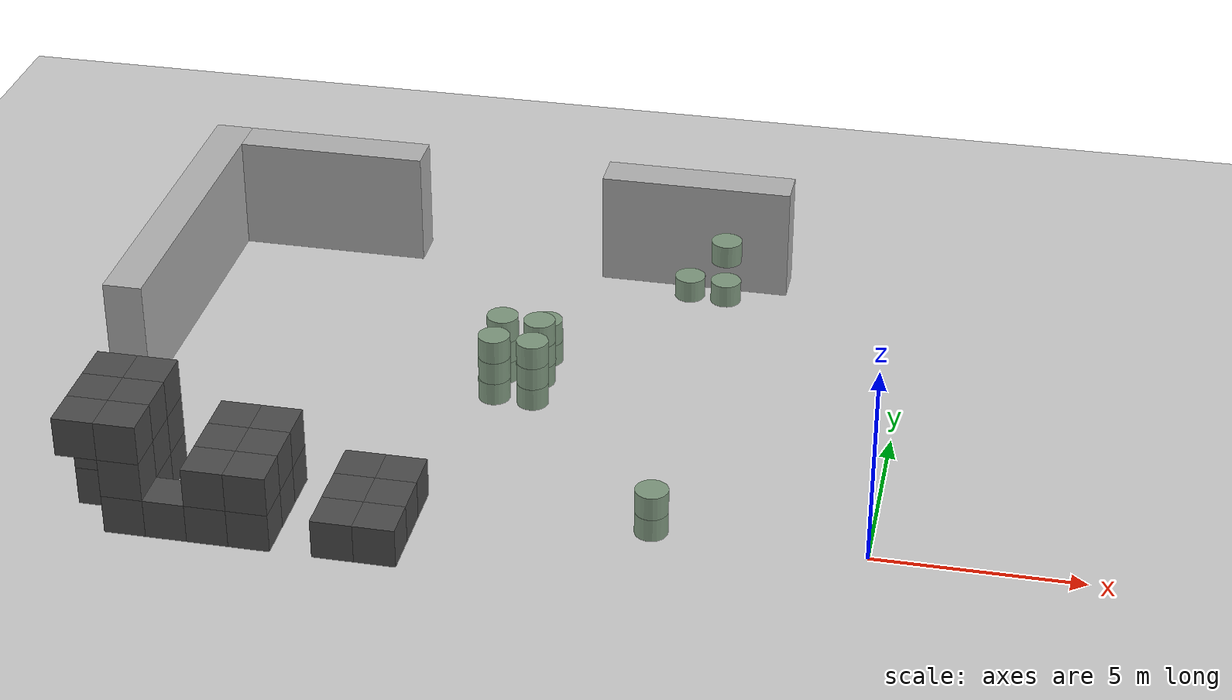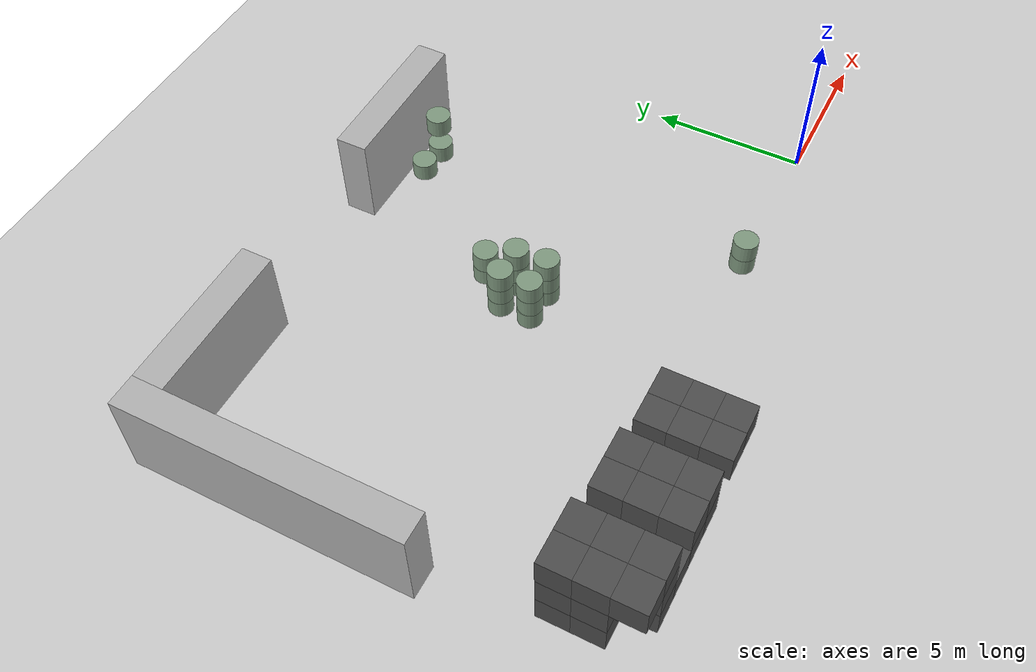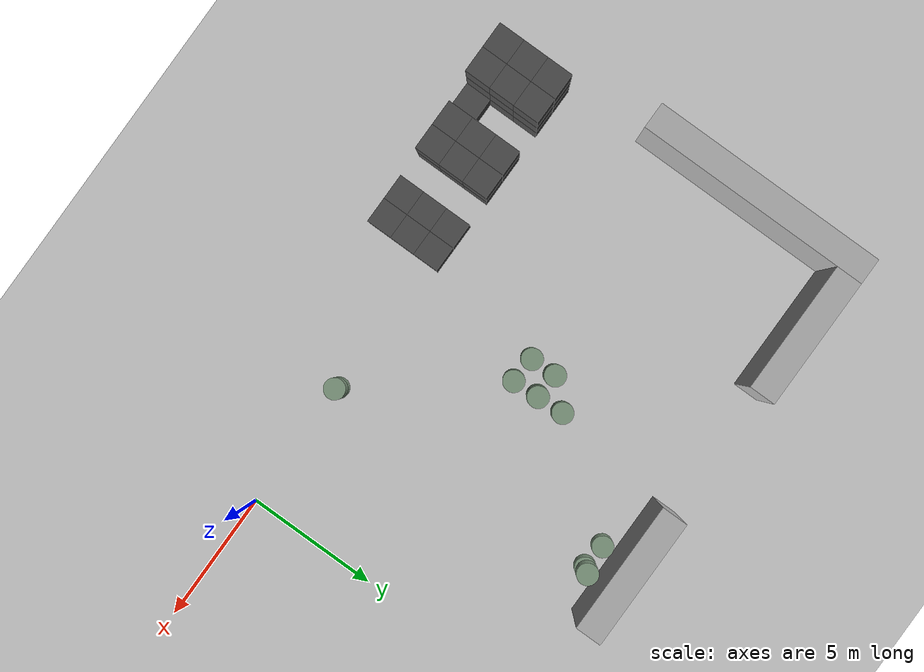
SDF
<sdf version="1.6">
 <world name="default">
  <include><uri>model://ground_plane</uri></include>
  <model name="wall_1">
   <pose>-19.0 8.0 1.5 0 -0 0</pose>
   <static>True</static>
   <link name="link">
    <inertial>
     <mass>100</mass>
     <inertia>
      <ixx>0.166667</ixx>
      <ixy>0</ixy>
      <ixz>0</ixz>
      <iyy>0.166667</iyy>
      <iyz>0</iyz>
      <izz>0.166667</izz>
     </inertia>
    </inertial>
    <collision name="collision"><geometry><box><size>1.0 9.0 3.0</size></box></geometry></collision>
    <visual name="visual">
     <geometry><box><size>1.0 9.0 3.0</size></box></geometry>
     <material><ambient>0.7 0.7 0.7 1</ambient><diffuse>0.7 0.7 0.7 1</diffuse></material>
    </visual>
   </link>
  </model>
  <model name="wall_9">
   <pose>-16.0 12.0 1.5 0 -0 0</pose>
   <static>True</static>
   <link name="link">
    <inertial>
     <mass>100</mass>
     <inertia>
      <ixx>0.166667</ixx>
      <ixy>0</ixy>
      <ixz>0</ixz>
      <iyy>0.166667</iyy>
      <iyz>0</iyz>
      <izz>0.166667</izz>
     </inertia>
    </inertial>
    <collision name="collision"><geometry><box><size>5.0 1.0 3.0</size></box></geometry></collision>
    <visual name="visual">
     <geometry><box><size>5.0 1.0 3.0</size></box></geometry>
     <material><ambient>0.7 0.7 0.7 1</ambient><diffuse>0.7 0.7 0.7 1</diffuse></material>
    </visual>
   </link>
  </model>
  <model name="wall_10">
   <pose>-6.0 12.0 1.5 0 -0 0</pose>
   <static>True</static>
   <link name="link">
    <inertial>
     <mass>100</mass>
     <inertia>
      <ixx>0.166667</ixx>
      <ixy>0</ixy>
      <ixz>0</ixz>
      <iyy>0.166667</iyy>
      <iyz>0</iyz>
      <izz>0.166667</izz>
     </inertia>
    </inertial>
    <collision name="collision"><geometry><box><size>5.0 1.0 3.0</size></box></geometry></collision>
    <visual name="visual">
     <geometry><box><size>5.0 1.0 3.0</size></box></geometry>
     <material><ambient>0.7 0.7 0.7 1</ambient><diffuse>0.7 0.7 0.7 1</diffuse></material>
    </visual>
   </link>
  </model>
  <model name="unit_box_10">
   <pose>-18.0 -2.0 2.5 0 -0 0</pose>
   <static>True</static>
   <link name="link">
    <inertial>
     <mass>100</mass>
     <inertia>
      <ixx>0.166667</ixx>
      <ixy>0</ixy>
      <ixz>0</ixz>
      <iyy>0.166667</iyy>
      <iyz>0</iyz>
      <izz>0.166667</izz>
     </inertia>
    </inertial>
    <collision name="collision"><geometry><box><size>1.0 1.0 1.0</size></box></geometry></collision>
    <visual name="visual">
     <geometry><box><size>1.0 1.0 1.0</size></box></geometry>
     <material><ambient>0.3 0.3 0.3 1</ambient><diffuse>0.3 0.3 0.3 1</diffuse></material>
    </visual>
   </link>
  </model>
  <model name="unit_box_11">
   <pose>-18.0 -1.0 0.5 0 -0 0</pose>
   <static>True</static>
   <link name="link">
    <inertial>
     <mass>100</mass>
     <inertia>
      <ixx>0.166667</ixx>
      <ixy>0</ixy>
      <ixz>0</ixz>
      <iyy>0.166667</iyy>
      <iyz>0</iyz>
      <izz>0.166667</izz>
     </inertia>
    </inertial>
    <collision name="collision"><geometry><box><size>1.0 1.0 1.0</size></box></geometry></collision>
    <visual name="visual">
     <geometry><box><size>1.0 1.0 1.0</size></box></geometry>
     <material><ambient>0.3 0.3 0.3 1</ambient><diffuse>0.3 0.3 0.3 1</diffuse></material>
    </visual>
   </link>
  </model>
  <model name="unit_box_12">
   <pose>-18.0 -1.0 1.5 0 -0 0</pose>
   <static>True</static>
   <link name="link">
    <inertial>
     <mass>100</mass>
     <inertia>
      <ixx>0.166667</ixx>
      <ixy>0</ixy>
      <ixz>0</ixz>
      <iyy>0.166667</iyy>
      <iyz>0</iyz>
      <izz>0.166667</izz>
     </inertia>
    </inertial>
    <collision name="collision"><geometry><box><size>1.0 1.0 1.0</size></box></geometry></collision>
    <visual name="visual">
     <geometry><box><size>1.0 1.0 1.0</size></box></geometry>
     <material><ambient>0.3 0.3 0.3 1</ambient><diffuse>0.3 0.3 0.3 1</diffuse></material>
    </visual>
   </link>
  </model>
  <model name="unit_box_13">
   <pose>-18.0 -1.0 2.5 0 -0 0</pose>
   <static>True</static>
   <link name="link">
    <inertial>
     <mass>100</mass>
     <inertia>
      <ixx>0.166667</ixx>
      <ixy>0</ixy>
      <ixz>0</ixz>
      <iyy>0.166667</iyy>
      <iyz>0</iyz>
      <izz>0.166667</izz>
     </inertia>
    </inertial>
    <collision name="collision"><geometry><box><size>1.0 1.0 1.0</size></box></geometry></collision>
    <visual name="visual">
     <geometry><box><size>1.0 1.0 1.0</size></box></geometry>
     <material><ambient>0.3 0.3 0.3 1</ambient><diffuse>0.3 0.3 0.3 1</diffuse></material>
    </visual>
   </link>
  </model>
  <model name="unit_box_14">
   <pose>-18.0 0.0 0.5 0 -0 0</pose>
   <static>True</static>
   <link name="link">
    <inertial>
     <mass>100</mass>
     <inertia>
      <ixx>0.166667</ixx>
      <ixy>0</ixy>
      <ixz>0</ixz>
      <iyy>0.166667</iyy>
      <iyz>0</iyz>
      <izz>0.166667</izz>
     </inertia>
    </inertial>
    <collision name="collision"><geometry><box><size>1.0 1.0 1.0</size></box></geometry></collision>
    <visual name="visual">
     <geometry><box><size>1.0 1.0 1.0</size></box></geometry>
     <material><ambient>0.3 0.3 0.3 1</ambient><diffuse>0.3 0.3 0.3 1</diffuse></material>
    </visual>
   </link>
  </model>
  <model name="unit_box_15">
   <pose>-18.0 0.0 1.5 0 -0 0</pose>
   <static>True</static>
   <link name="link">
    <inertial>
     <mass>100</mass>
     <inertia>
      <ixx>0.166667</ixx>
      <ixy>0</ixy>
      <ixz>0</ixz>
      <iyy>0.166667</iyy>
      <iyz>0</iyz>
      <izz>0.166667</izz>
     </inertia>
    </inertial>
    <collision name="collision"><geometry><box><size>1.0 1.0 1.0</size></box></geometry></collision>
    <visual name="visual">
     <geometry><box><size>1.0 1.0 1.0</size></box></geometry>
     <material><ambient>0.3 0.3 0.3 1</ambient><diffuse>0.3 0.3 0.3 1</diffuse></material>
    </visual>
   </link>
  </model>
  <model name="unit_box_16">
   <pose>-18.0 0.0 2.5 0 -0 0</pose>
   <static>True</static>
   <link name="link">
    <inertial>
     <mass>100</mass>
     <inertia>
      <ixx>0.166667</ixx>
      <ixy>0</ixy>
      <ixz>0</ixz>
      <iyy>0.166667</iyy>
      <iyz>0</iyz>
      <izz>0.166667</izz>
     </inertia>
    </inertial>
    <collision name="collision"><geometry><box><size>1.0 1.0 1.0</size></box></geometry></collision>
    <visual name="visual">
     <geometry><box><size>1.0 1.0 1.0</size></box></geometry>
     <material><ambient>0.3 0.3 0.3 1</ambient><diffuse>0.3 0.3 0.3 1</diffuse></material>
    </visual>
   </link>
  </model>
  <model name="unit_box_20">
   <pose>-17.0 -2.0 0.5 0 -0 0</pose>
   <static>True</static>
   <link name="link">
    <inertial>
     <mass>100</mass>
     <inertia>
      <ixx>0.166667</ixx>
      <ixy>0</ixy>
      <ixz>0</ixz>
      <iyy>0.166667</iyy>
      <iyz>0</iyz>
      <izz>0.166667</izz>
     </inertia>
    </inertial>
    <collision name="collision"><geometry><box><size>1.0 1.0 1.0</size></box></geometry></collision>
    <visual name="visual">
     <geometry><box><size>1.0 1.0 1.0</size></box></geometry>
     <material><ambient>0.3 0.3 0.3 1</ambient><diffuse>0.3 0.3 0.3 1</diffuse></material>
    </visual>
   </link>
  </model>
  <model name="unit_box_21">
   <pose>-17.0 -2.0 1.5 0 -0 0</pose>
   <static>True</static>
   <link name="link">
    <inertial>
     <mass>100</mass>
     <inertia>
      <ixx>0.166667</ixx>
      <ixy>0</ixy>
      <ixz>0</ixz>
      <iyy>0.166667</iyy>
      <iyz>0</iyz>
      <izz>0.166667</izz>
     </inertia>
    </inertial>
    <collision name="collision"><geometry><box><size>1.0 1.0 1.0</size></box></geometry></collision>
    <visual name="visual">
     <geometry><box><size>1.0 1.0 1.0</size></box></geometry>
     <material><ambient>0.3 0.3 0.3 1</ambient><diffuse>0.3 0.3 0.3 1</diffuse></material>
    </visual>
   </link>
  </model>
  <model name="unit_box_22">
   <pose>-17.0 -2.0 2.5 0 -0 0</pose>
   <static>True</static>
   <link name="link">
    <inertial>
     <mass>100</mass>
     <inertia>
      <ixx>0.166667</ixx>
      <ixy>0</ixy>
      <ixz>0</ixz>
      <iyy>0.166667</iyy>
      <iyz>0</iyz>
      <izz>0.166667</izz>
     </inertia>
    </inertial>
    <collision name="collision"><geometry><box><size>1.0 1.0 1.0</size></box></geometry></collision>
    <visual name="visual">
     <geometry><box><size>1.0 1.0 1.0</size></box></geometry>
     <material><ambient>0.3 0.3 0.3 1</ambient><diffuse>0.3 0.3 0.3 1</diffuse></material>
    </visual>
   </link>
  </model>
  <model name="unit_box_23">
   <pose>-17.0 -1.0 0.5 0 -0 0</pose>
   <static>True</static>
   <link name="link">
    <inertial>
     <mass>100</mass>
     <inertia>
      <ixx>0.166667</ixx>
      <ixy>0</ixy>
      <ixz>0</ixz>
      <iyy>0.166667</iyy>
      <iyz>0</iyz>
      <izz>0.166667</izz>
     </inertia>
    </inertial>
    <collision name="collision"><geometry><box><size>1.0 1.0 1.0</size></box></geometry></collision>
    <visual name="visual">
     <geometry><box><size>1.0 1.0 1.0</size></box></geometry>
     <material><ambient>0.3 0.3 0.3 1</ambient><diffuse>0.3 0.3 0.3 1</diffuse></material>
    </visual>
   </link>
  </model>
  <model name="unit_box_24">
   <pose>-17.0 -1.0 1.5 0 -0 0</pose>
   <static>True</static>
   <link name="link">
    <inertial>
     <mass>100</mass>
     <inertia>
      <ixx>0.166667</ixx>
      <ixy>0</ixy>
      <ixz>0</ixz>
      <iyy>0.166667</iyy>
      <iyz>0</iyz>
      <izz>0.166667</izz>
     </inertia>
    </inertial>
    <collision name="collision"><geometry><box><size>1.0 1.0 1.0</size></box></geometry></collision>
    <visual name="visual">
     <geometry><box><size>1.0 1.0 1.0</size></box></geometry>
     <material><ambient>0.3 0.3 0.3 1</ambient><diffuse>0.3 0.3 0.3 1</diffuse></material>
    </visual>
   </link>
  </model>
  <model name="unit_box_25">
   <pose>-17.0 -1.0 2.5 0 -0 0</pose>
   <static>True</static>
   <link name="link">
    <inertial>
     <mass>100</mass>
     <inertia>
      <ixx>0.166667</ixx>
      <ixy>0</ixy>
      <ixz>0</ixz>
      <iyy>0.166667</iyy>
      <iyz>0</iyz>
      <izz>0.166667</izz>
     </inertia>
    </inertial>
    <collision name="collision"><geometry><box><size>1.0 1.0 1.0</size></box></geometry></collision>
    <visual name="visual">
     <geometry><box><size>1.0 1.0 1.0</size></box></geometry>
     <material><ambient>0.3 0.3 0.3 1</ambient><diffuse>0.3 0.3 0.3 1</diffuse></material>
    </visual>
   </link>
  </model>
  <model name="unit_box_26">
   <pose>-17.0 0.0 0.5 0 -0 0</pose>
   <static>True</static>
   <link name="link">
    <inertial>
     <mass>100</mass>
     <inertia>
      <ixx>0.166667</ixx>
      <ixy>0</ixy>
      <ixz>0</ixz>
      <iyy>0.166667</iyy>
      <iyz>0</iyz>
      <izz>0.166667</izz>
     </inertia>
    </inertial>
    <collision name="collision"><geometry><box><size>1.0 1.0 1.0</size></box></geometry></collision>
    <visual name="visual">
     <geometry><box><size>1.0 1.0 1.0</size></box></geometry>
     <material><ambient>0.3 0.3 0.3 1</ambient><diffuse>0.3 0.3 0.3 1</diffuse></material>
    </visual>
   </link>
  </model>
  <model name="unit_box_27">
   <pose>-17.0 0.0 1.5 0 -0 0</pose>
   <static>True</static>
   <link name="link">
    <inertial>
     <mass>100</mass>
     <inertia>
      <ixx>0.166667</ixx>
      <ixy>0</ixy>
      <ixz>0</ixz>
      <iyy>0.166667</iyy>
      <iyz>0</iyz>
      <izz>0.166667</izz>
     </inertia>
    </inertial>
    <collision name="collision"><geometry><box><size>1.0 1.0 1.0</size></box></geometry></collision>
    <visual name="visual">
     <geometry><box><size>1.0 1.0 1.0</size></box></geometry>
     <material><ambient>0.3 0.3 0.3 1</ambient><diffuse>0.3 0.3 0.3 1</diffuse></material>
    </visual>
   </link>
  </model>
  <model name="unit_box_28">
   <pose>-17.0 0.0 2.5 0 -0 0</pose>
   <static>True</static>
   <link name="link">
    <inertial>
     <mass>100</mass>
     <inertia>
      <ixx>0.166667</ixx>
      <ixy>0</ixy>
      <ixz>0</ixz>
      <iyy>0.166667</iyy>
      <iyz>0</iyz>
      <izz>0.166667</izz>
     </inertia>
    </inertial>
    <collision name="collision"><geometry><box><size>1.0 1.0 1.0</size></box></geometry></collision>
    <visual name="visual">
     <geometry><box><size>1.0 1.0 1.0</size></box></geometry>
     <material><ambient>0.3 0.3 0.3 1</ambient><diffuse>0.3 0.3 0.3 1</diffuse></material>
    </visual>
   </link>
  </model>
  <model name="unit_box_29">
   <pose>-16.0 -2.0 0.5 0 -0 0</pose>
   <static>True</static>
   <link name="link">
    <inertial>
     <mass>100</mass>
     <inertia>
      <ixx>0.166667</ixx>
      <ixy>0</ixy>
      <ixz>0</ixz>
      <iyy>0.166667</iyy>
      <iyz>0</iyz>
      <izz>0.166667</izz>
     </inertia>
    </inertial>
    <collision name="collision"><geometry><box><size>1.0 1.0 1.0</size></box></geometry></collision>
    <visual name="visual">
     <geometry><box><size>1.0 1.0 1.0</size></box></geometry>
     <material><ambient>0.3 0.3 0.3 1</ambient><diffuse>0.3 0.3 0.3 1</diffuse></material>
    </visual>
   </link>
  </model>
  <model name="unit_box_32">
   <pose>-15.0 -2.0 0.5 0 -0 0</pose>
   <static>True</static>
   <link name="link">
    <inertial>
     <mass>100</mass>
     <inertia>
      <ixx>0.166667</ixx>
      <ixy>0</ixy>
      <ixz>0</ixz>
      <iyy>0.166667</iyy>
      <iyz>0</iyz>
      <izz>0.166667</izz>
     </inertia>
    </inertial>
    <collision name="collision"><geometry><box><size>1.0 1.0 1.0</size></box></geometry></collision>
    <visual name="visual">
     <geometry><box><size>1.0 1.0 1.0</size></box></geometry>
     <material><ambient>0.3 0.3 0.3 1</ambient><diffuse>0.3 0.3 0.3 1</diffuse></material>
    </visual>
   </link>
  </model>
  <model name="unit_box_33">
   <pose>-15.0 -2.0 1.5 0 -0 0</pose>
   <static>True</static>
   <link name="link">
    <inertial>
     <mass>100</mass>
     <inertia>
      <ixx>0.166667</ixx>
      <ixy>0</ixy>
      <ixz>0</ixz>
      <iyy>0.166667</iyy>
      <iyz>0</iyz>
      <izz>0.166667</izz>
     </inertia>
    </inertial>
    <collision name="collision"><geometry><box><size>1.0 1.0 1.0</size></box></geometry></collision>
    <visual name="visual">
     <geometry><box><size>1.0 1.0 1.0</size></box></geometry>
     <material><ambient>0.3 0.3 0.3 1</ambient><diffuse>0.3 0.3 0.3 1</diffuse></material>
    </visual>
   </link>
  </model>
  <model name="unit_box_34">
   <pose>-15.0 -1.0 0.5 0 -0 0</pose>
   <static>True</static>
   <link name="link">
    <inertial>
     <mass>100</mass>
     <inertia>
      <ixx>0.166667</ixx>
      <ixy>0</ixy>
      <ixz>0</ixz>
      <iyy>0.166667</iyy>
      <iyz>0</iyz>
      <izz>0.166667</izz>
     </inertia>
    </inertial>
    <collision name="collision"><geometry><box><size>1.0 1.0 1.0</size></box></geometry></collision>
    <visual name="visual">
     <geometry><box><size>1.0 1.0 1.0</size></box></geometry>
     <material><ambient>0.3 0.3 0.3 1</ambient><diffuse>0.3 0.3 0.3 1</diffuse></material>
    </visual>
   </link>
  </model>
  <model name="unit_box_35">
   <pose>-15.0 -1.0 1.5 0 -0 0</pose>
   <static>True</static>
   <link name="link">
    <inertial>
     <mass>100</mass>
     <inertia>
      <ixx>0.166667</ixx>
      <ixy>0</ixy>
      <ixz>0</ixz>
      <iyy>0.166667</iyy>
      <iyz>0</iyz>
      <izz>0.166667</izz>
     </inertia>
    </inertial>
    <collision name="collision"><geometry><box><size>1.0 1.0 1.0</size></box></geometry></collision>
    <visual name="visual">
     <geometry><box><size>1.0 1.0 1.0</size></box></geometry>
     <material><ambient>0.3 0.3 0.3 1</ambient><diffuse>0.3 0.3 0.3 1</diffuse></material>
    </visual>
   </link>
  </model>
  <model name="unit_box_36">
   <pose>-15.0 0.0 0.5 0 -0 0</pose>
   <static>True</static>
   <link name="link">
    <inertial>
     <mass>100</mass>
     <inertia>
      <ixx>0.166667</ixx>
      <ixy>0</ixy>
      <ixz>0</ixz>
      <iyy>0.166667</iyy>
      <iyz>0</iyz>
      <izz>0.166667</izz>
     </inertia>
    </inertial>
    <collision name="collision"><geometry><box><size>1.0 1.0 1.0</size></box></geometry></collision>
    <visual name="visual">
     <geometry><box><size>1.0 1.0 1.0</size></box></geometry>
     <material><ambient>0.3 0.3 0.3 1</ambient><diffuse>0.3 0.3 0.3 1</diffuse></material>
    </visual>
   </link>
  </model>
  <model name="unit_box_37">
   <pose>-15.0 0.0 1.5 0 -0 0</pose>
   <static>True</static>
   <link name="link">
    <inertial>
     <mass>100</mass>
     <inertia>
      <ixx>0.166667</ixx>
      <ixy>0</ixy>
      <ixz>0</ixz>
      <iyy>0.166667</iyy>
      <iyz>0</iyz>
      <izz>0.166667</izz>
     </inertia>
    </inertial>
    <collision name="collision"><geometry><box><size>1.0 1.0 1.0</size></box></geometry></collision>
    <visual name="visual">
     <geometry><box><size>1.0 1.0 1.0</size></box></geometry>
     <material><ambient>0.3 0.3 0.3 1</ambient><diffuse>0.3 0.3 0.3 1</diffuse></material>
    </visual>
   </link>
  </model>
  <model name="unit_box_42">
   <pose>-14.0 -2.0 0.5 0 -0 0</pose>
   <static>True</static>
   <link name="link">
    <inertial>
     <mass>100</mass>
     <inertia>
      <ixx>0.166667</ixx>
      <ixy>0</ixy>
      <ixz>0</ixz>
      <iyy>0.166667</iyy>
      <iyz>0</iyz>
      <izz>0.166667</izz>
     </inertia>
    </inertial>
    <collision name="collision"><geometry><box><size>1.0 1.0 1.0</size></box></geometry></collision>
    <visual name="visual">
     <geometry><box><size>1.0 1.0 1.0</size></box></geometry>
     <material><ambient>0.3 0.3 0.3 1</ambient><diffuse>0.3 0.3 0.3 1</diffuse></material>
    </visual>
   </link>
  </model>
  <model name="unit_box_43">
   <pose>-14.0 -2.0 1.5 0 -0 0</pose>
   <static>True</static>
   <link name="link">
    <inertial>
     <mass>100</mass>
     <inertia>
      <ixx>0.166667</ixx>
      <ixy>0</ixy>
      <ixz>0</ixz>
      <iyy>0.166667</iyy>
      <iyz>0</iyz>
      <izz>0.166667</izz>
     </inertia>
    </inertial>
    <collision name="collision"><geometry><box><size>1.0 1.0 1.0</size></box></geometry></collision>
    <visual name="visual">
     <geometry><box><size>1.0 1.0 1.0</size></box></geometry>
     <material><ambient>0.3 0.3 0.3 1</ambient><diffuse>0.3 0.3 0.3 1</diffuse></material>
    </visual>
   </link>
  </model>
  <model name="unit_box_44">
   <pose>-14.0 -1.0 0.5 0 -0 0</pose>
   <static>True</static>
   <link name="link">
    <inertial>
     <mass>100</mass>
     <inertia>
      <ixx>0.166667</ixx>
      <ixy>0</ixy>
      <ixz>0</ixz>
      <iyy>0.166667</iyy>
      <iyz>0</iyz>
      <izz>0.166667</izz>
     </inertia>
    </inertial>
    <collision name="collision"><geometry><box><size>1.0 1.0 1.0</size></box></geometry></collision>
    <visual name="visual">
     <geometry><box><size>1.0 1.0 1.0</size></box></geometry>
     <material><ambient>0.3 0.3 0.3 1</ambient><diffuse>0.3 0.3 0.3 1</diffuse></material>
    </visual>
   </link>
  </model>
  <model name="unit_box_45">
   <pose>-14.0 -1.0 1.5 0 -0 0</pose>
   <static>True</static>
   <link name="link">
    <inertial>
     <mass>100</mass>
     <inertia>
      <ixx>0.166667</ixx>
      <ixy>0</ixy>
      <ixz>0</ixz>
      <iyy>0.166667</iyy>
      <iyz>0</iyz>
      <izz>0.166667</izz>
     </inertia>
    </inertial>
    <collision name="collision"><geometry><box><size>1.0 1.0 1.0</size></box></geometry></collision>
    <visual name="visual">
     <geometry><box><size>1.0 1.0 1.0</size></box></geometry>
     <material><ambient>0.3 0.3 0.3 1</ambient><diffuse>0.3 0.3 0.3 1</diffuse></material>
    </visual>
   </link>
  </model>
  <model name="unit_box_46">
   <pose>-14.0 0.0 0.5 0 -0 0</pose>
   <static>True</static>
   <link name="link">
    <inertial>
     <mass>100</mass>
     <inertia>
      <ixx>0.166667</ixx>
      <ixy>0</ixy>
      <ixz>0</ixz>
      <iyy>0.166667</iyy>
      <iyz>0</iyz>
      <izz>0.166667</izz>
     </inertia>
    </inertial>
    <collision name="collision"><geometry><box><size>1.0 1.0 1.0</size></box></geometry></collision>
    <visual name="visual">
     <geometry><box><size>1.0 1.0 1.0</size></box></geometry>
     <material><ambient>0.3 0.3 0.3 1</ambient><diffuse>0.3 0.3 0.3 1</diffuse></material>
    </visual>
   </link>
  </model>
  <model name="unit_box_47">
   <pose>-14.0 0.0 1.5 0 -0 0</pose>
   <static>True</static>
   <link name="link">
    <inertial>
     <mass>100</mass>
     <inertia>
      <ixx>0.166667</ixx>
      <ixy>0</ixy>
      <ixz>0</ixz>
      <iyy>0.166667</iyy>
      <iyz>0</iyz>
      <izz>0.166667</izz>
     </inertia>
    </inertial>
    <collision name="collision"><geometry><box><size>1.0 1.0 1.0</size></box></geometry></collision>
    <visual name="visual">
     <geometry><box><size>1.0 1.0 1.0</size></box></geometry>
     <material><ambient>0.3 0.3 0.3 1</ambient><diffuse>0.3 0.3 0.3 1</diffuse></material>
    </visual>
   </link>
  </model>
  <model name="unit_box_50">
   <pose>-12.0 -2.0 0.5 0 -0 0</pose>
   <static>True</static>
   <link name="link">
    <inertial>
     <mass>100</mass>
     <inertia>
      <ixx>0.166667</ixx>
      <ixy>0</ixy>
      <ixz>0</ixz>
      <iyy>0.166667</iyy>
      <iyz>0</iyz>
      <izz>0.166667</izz>
     </inertia>
    </inertial>
    <collision name="collision"><geometry><box><size>1.0 1.0 1.0</size></box></geometry></collision>
    <visual name="visual">
     <geometry><box><size>1.0 1.0 1.0</size></box></geometry>
     <material><ambient>0.3 0.3 0.3 1</ambient><diffuse>0.3 0.3 0.3 1</diffuse></material>
    </visual>
   </link>
  </model>
  <model name="unit_box_51">
   <pose>-12.0 -1.0 0.5 0 -0 0</pose>
   <static>True</static>
   <link name="link">
    <inertial>
     <mass>100</mass>
     <inertia>
      <ixx>0.166667</ixx>
      <ixy>0</ixy>
      <ixz>0</ixz>
      <iyy>0.166667</iyy>
      <iyz>0</iyz>
      <izz>0.166667</izz>
     </inertia>
    </inertial>
    <collision name="collision"><geometry><box><size>1.0 1.0 1.0</size></box></geometry></collision>
    <visual name="visual">
     <geometry><box><size>1.0 1.0 1.0</size></box></geometry>
     <material><ambient>0.3 0.3 0.3 1</ambient><diffuse>0.3 0.3 0.3 1</diffuse></material>
    </visual>
   </link>
  </model>
  <model name="unit_box_52">
   <pose>-12.0 0.0 0.5 0 -0 0</pose>
   <static>True</static>
   <link name="link">
    <inertial>
     <mass>100</mass>
     <inertia>
      <ixx>0.166667</ixx>
      <ixy>0</ixy>
      <ixz>0</ixz>
      <iyy>0.166667</iyy>
      <iyz>0</iyz>
      <izz>0.166667</izz>
     </inertia>
    </inertial>
    <collision name="collision"><geometry><box><size>1.0 1.0 1.0</size></box></geometry></collision>
    <visual name="visual">
     <geometry><box><size>1.0 1.0 1.0</size></box></geometry>
     <material><ambient>0.3 0.3 0.3 1</ambient><diffuse>0.3 0.3 0.3 1</diffuse></material>
    </visual>
   </link>
  </model>
  <model name="unit_box_55">
   <pose>-11.0 -2.0 0.5 0 -0 0</pose>
   <static>True</static>
   <link name="link">
    <inertial>
     <mass>100</mass>
     <inertia>
      <ixx>0.166667</ixx>
      <ixy>0</ixy>
      <ixz>0</ixz>
      <iyy>0.166667</iyy>
      <iyz>0</iyz>
      <izz>0.166667</izz>
     </inertia>
    </inertial>
    <collision name="collision"><geometry><box><size>1.0 1.0 1.0</size></box></geometry></collision>
    <visual name="visual">
     <geometry><box><size>1.0 1.0 1.0</size></box></geometry>
     <material><ambient>0.3 0.3 0.3 1</ambient><diffuse>0.3 0.3 0.3 1</diffuse></material>
    </visual>
   </link>
  </model>
  <model name="unit_box_56">
   <pose>-11.0 -1.0 0.5 0 -0 0</pose>
   <static>True</static>
   <link name="link">
    <inertial>
     <mass>100</mass>
     <inertia>
      <ixx>0.166667</ixx>
      <ixy>0</ixy>
      <ixz>0</ixz>
      <iyy>0.166667</iyy>
      <iyz>0</iyz>
      <izz>0.166667</izz>
     </inertia>
    </inertial>
    <collision name="collision"><geometry><box><size>1.0 1.0 1.0</size></box></geometry></collision>
    <visual name="visual">
     <geometry><box><size>1.0 1.0 1.0</size></box></geometry>
     <material><ambient>0.3 0.3 0.3 1</ambient><diffuse>0.3 0.3 0.3 1</diffuse></material>
    </visual>
   </link>
  </model>
  <model name="unit_box_57">
   <pose>-11.0 0.0 0.5 0 -0 0</pose>
   <static>True</static>
   <link name="link">
    <inertial>
     <mass>100</mass>
     <inertia>
      <ixx>0.166667</ixx>
      <ixy>0</ixy>
      <ixz>0</ixz>
      <iyy>0.166667</iyy>
      <iyz>0</iyz>
      <izz>0.166667</izz>
     </inertia>
    </inertial>
    <collision name="collision"><geometry><box><size>1.0 1.0 1.0</size></box></geometry></collision>
    <visual name="visual">
     <geometry><box><size>1.0 1.0 1.0</size></box></geometry>
     <material><ambient>0.3 0.3 0.3 1</ambient><diffuse>0.3 0.3 0.3 1</diffuse></material>
    </visual>
   </link>
  </model>
  <model name="unit_cylinder_42">
   <pose>-9.96679663354 5.0319738293 0.3 0 -0 0</pose>
   <static>True</static>
   <link name="link">
    <inertial>
     <mass>100</mass>
     <inertia><ixx>0.145833</ixx><ixy>0</ixy><ixz>0</ixz><iyy>0.145833</iyy><iyz>0</iyz><izz>0.125</izz></inertia>
    </inertial>
    <collision name="collision">
     <geometry><cylinder><radius>0.4</radius><length>0.6</length></cylinder></geometry>
     <max_contacts>100</max_contacts>
    </collision>
    <visual name="visual">
     <geometry><cylinder><radius>0.4</radius><length>0.6</length></cylinder></geometry>
     <material><ambient>0.5 0.6 0.5 1</ambient><diffuse>0.5 0.6 0.5 1</diffuse></material>
    </visual>
   </link>
  </model>
  <model name="unit_cylinder_43">
   <pose>-9.95777693728 5.03190906488 0.9 0 -0 0</pose>
   <static>True</static>
   <link name="link">
    <inertial>
     <mass>100</mass>
     <inertia><ixx>0.145833</ixx><ixy>0</ixy><ixz>0</ixz><iyy>0.145833</iyy><iyz>0</iyz><izz>0.125</izz></inertia>
    </inertial>
    <collision name="collision">
     <geometry><cylinder><radius>0.4</radius><length>0.6</length></cylinder></geometry>
     <max_contacts>100</max_contacts>
    </collision>
    <visual name="visual">
     <geometry><cylinder><radius>0.4</radius><length>0.6</length></cylinder></geometry>
     <material><ambient>0.5 0.6 0.5 1</ambient><diffuse>0.5 0.6 0.5 1</diffuse></material>
    </visual>
   </link>
  </model>
  <model name="unit_cylinder_44">
   <pose>-9.95690958295 5.04395994404 1.5 0 -0 0</pose>
   <static>True</static>
   <link name="link">
    <inertial>
     <mass>100</mass>
     <inertia><ixx>0.145833</ixx><ixy>0</ixy><ixz>0</ixz><iyy>0.145833</iyy><iyz>0</iyz><izz>0.125</izz></inertia>
    </inertial>
    <collision name="collision">
     <geometry><cylinder><radius>0.4</radius><length>0.6</length></cylinder></geometry>
     <max_contacts>100</max_contacts>
    </collision>
    <visual name="visual">
     <geometry><cylinder><radius>0.4</radius><length>0.6</length></cylinder></geometry>
     <material><ambient>0.5 0.6 0.5 1</ambient><diffuse>0.5 0.6 0.5 1</diffuse></material>
    </visual>
   </link>
  </model>
  <model name="unit_cylinder_45">
   <pose>-9.96695724674 6.03366346893 0.3 0 -0 0</pose>
   <static>True</static>
   <link name="link">
    <inertial>
     <mass>100</mass>
     <inertia><ixx>0.145833</ixx><ixy>0</ixy><ixz>0</ixz><iyy>0.145833</iyy><iyz>0</iyz><izz>0.125</izz></inertia>
    </inertial>
    <collision name="collision">
     <geometry><cylinder><radius>0.4</radius><length>0.6</length></cylinder></geometry>
     <max_contacts>100</max_contacts>
    </collision>
    <visual name="visual">
     <geometry><cylinder><radius>0.4</radius><length>0.6</length></cylinder></geometry>
     <material><ambient>0.5 0.6 0.5 1</ambient><diffuse>0.5 0.6 0.5 1</diffuse></material>
    </visual>
   </link>
  </model>
  <model name="unit_cylinder_46">
   <pose>-9.96040254289 6.04429119237 0.9 0 -0 0</pose>
   <static>True</static>
   <link name="link">
    <inertial>
     <mass>100</mass>
     <inertia><ixx>0.145833</ixx><ixy>0</ixy><ixz>0</ixz><iyy>0.145833</iyy><iyz>0</iyz><izz>0.125</izz></inertia>
    </inertial>
    <collision name="collision">
     <geometry><cylinder><radius>0.4</radius><length>0.6</length></cylinder></geometry>
     <max_contacts>100</max_contacts>
    </collision>
    <visual name="visual">
     <geometry><cylinder><radius>0.4</radius><length>0.6</length></cylinder></geometry>
     <material><ambient>0.5 0.6 0.5 1</ambient><diffuse>0.5 0.6 0.5 1</diffuse></material>
    </visual>
   </link>
  </model>
  <model name="unit_cylinder_47">
   <pose>-9.96478203506 6.02734404073 1.5 0 -0 0</pose>
   <static>True</static>
   <link name="link">
    <inertial>
     <mass>100</mass>
     <inertia><ixx>0.145833</ixx><ixy>0</ixy><ixz>0</ixz><iyy>0.145833</iyy><iyz>0</iyz><izz>0.125</izz></inertia>
    </inertial>
    <collision name="collision">
     <geometry><cylinder><radius>0.4</radius><length>0.6</length></cylinder></geometry>
     <max_contacts>100</max_contacts>
    </collision>
    <visual name="visual">
     <geometry><cylinder><radius>0.4</radius><length>0.6</length></cylinder></geometry>
     <material><ambient>0.5 0.6 0.5 1</ambient><diffuse>0.5 0.6 0.5 1</diffuse></material>
    </visual>
   </link>
  </model>
  <model name="unit_cylinder_48">
   <pose>-8.97053658022 4.97552271316 0.3 0 -0 0</pose>
   <static>True</static>
   <link name="link">
    <inertial>
     <mass>100</mass>
     <inertia><ixx>0.145833</ixx><ixy>0</ixy><ixz>0</ixz><iyy>0.145833</iyy><iyz>0</iyz><izz>0.125</izz></inertia>
    </inertial>
    <collision name="collision">
     <geometry><cylinder><radius>0.4</radius><length>0.6</length></cylinder></geometry>
     <max_contacts>100</max_contacts>
    </collision>
    <visual name="visual">
     <geometry><cylinder><radius>0.4</radius><length>0.6</length></cylinder></geometry>
     <material><ambient>0.5 0.6 0.5 1</ambient><diffuse>0.5 0.6 0.5 1</diffuse></material>
    </visual>
   </link>
  </model>
  <model name="unit_cylinder_49">
   <pose>-8.96905535465 4.96968144146 0.9 0 -0 0</pose>
   <static>True</static>
   <link name="link">
    <inertial>
     <mass>100</mass>
     <inertia><ixx>0.145833</ixx><ixy>0</ixy><ixz>0</ixz><iyy>0.145833</iyy><iyz>0</iyz><izz>0.125</izz></inertia>
    </inertial>
    <collision name="collision">
     <geometry><cylinder><radius>0.4</radius><length>0.6</length></cylinder></geometry>
     <max_contacts>100</max_contacts>
    </collision>
    <visual name="visual">
     <geometry><cylinder><radius>0.4</radius><length>0.6</length></cylinder></geometry>
     <material><ambient>0.5 0.6 0.5 1</ambient><diffuse>0.5 0.6 0.5 1</diffuse></material>
    </visual>
   </link>
  </model>
  <model name="unit_cylinder_50">
   <pose>-8.96596165474 4.9722059427 1.5 0 -0 0</pose>
   <static>True</static>
   <link name="link">
    <inertial>
     <mass>100</mass>
     <inertia><ixx>0.145833</ixx><ixy>0</ixy><ixz>0</ixz><iyy>0.145833</iyy><iyz>0</iyz><izz>0.125</izz></inertia>
    </inertial>
    <collision name="collision">
     <geometry><cylinder><radius>0.4</radius><length>0.6</length></cylinder></geometry>
     <max_contacts>100</max_contacts>
    </collision>
    <visual name="visual">
     <geometry><cylinder><radius>0.4</radius><length>0.6</length></cylinder></geometry>
     <material><ambient>0.5 0.6 0.5 1</ambient><diffuse>0.5 0.6 0.5 1</diffuse></material>
    </visual>
   </link>
  </model>
  <model name="unit_cylinder_51">
   <pose>-9.02126562735 5.97316282437 0.3 0 -0 0</pose>
   <static>True</static>
   <link name="link">
    <inertial>
     <mass>100</mass>
     <inertia><ixx>0.145833</ixx><ixy>0</ixy><ixz>0</ixz><iyy>0.145833</iyy><iyz>0</iyz><izz>0.125</izz></inertia>
    </inertial>
    <collision name="collision">
     <geometry><cylinder><radius>0.4</radius><length>0.6</length></cylinder></geometry>
     <max_contacts>100</max_contacts>
    </collision>
    <visual name="visual">
     <geometry><cylinder><radius>0.4</radius><length>0.6</length></cylinder></geometry>
     <material><ambient>0.5 0.6 0.5 1</ambient><diffuse>0.5 0.6 0.5 1</diffuse></material>
    </visual>
   </link>
  </model>
  <model name="unit_cylinder_52">
   <pose>-9.00376361817 5.97483727621 0.9 0 -0 0</pose>
   <static>True</static>
   <link name="link">
    <inertial>
     <mass>100</mass>
     <inertia><ixx>0.145833</ixx><ixy>0</ixy><ixz>0</ixz><iyy>0.145833</iyy><iyz>0</iyz><izz>0.125</izz></inertia>
    </inertial>
    <collision name="collision">
     <geometry><cylinder><radius>0.4</radius><length>0.6</length></cylinder></geometry>
     <max_contacts>100</max_contacts>
    </collision>
    <visual name="visual">
     <geometry><cylinder><radius>0.4</radius><length>0.6</length></cylinder></geometry>
     <material><ambient>0.5 0.6 0.5 1</ambient><diffuse>0.5 0.6 0.5 1</diffuse></material>
    </visual>
   </link>
  </model>
  <model name="unit_cylinder_53">
   <pose>-9.01227902014 5.98367652352 1.5 0 -0 0</pose>
   <static>True</static>
   <link name="link">
    <inertial>
     <mass>100</mass>
     <inertia><ixx>0.145833</ixx><ixy>0</ixy><ixz>0</ixz><iyy>0.145833</iyy><iyz>0</iyz><izz>0.125</izz></inertia>
    </inertial>
    <collision name="collision">
     <geometry><cylinder><radius>0.4</radius><length>0.6</length></cylinder></geometry>
     <max_contacts>100</max_contacts>
    </collision>
    <visual name="visual">
     <geometry><cylinder><radius>0.4</radius><length>0.6</length></cylinder></geometry>
     <material><ambient>0.5 0.6 0.5 1</ambient><diffuse>0.5 0.6 0.5 1</diffuse></material>
    </visual>
   </link>
  </model>
  <model name="unit_cylinder_54">
   <pose>-9.04357003081 7.04186953438 0.3 0 -0 0</pose>
   <static>True</static>
   <link name="link">
    <inertial>
     <mass>100</mass>
     <inertia><ixx>0.145833</ixx><ixy>0</ixy><ixz>0</ixz><iyy>0.145833</iyy><iyz>0</iyz><izz>0.125</izz></inertia>
    </inertial>
    <collision name="collision">
     <geometry><cylinder><radius>0.4</radius><length>0.6</length></cylinder></geometry>
     <max_contacts>100</max_contacts>
    </collision>
    <visual name="visual">
     <geometry><cylinder><radius>0.4</radius><length>0.6</length></cylinder></geometry>
     <material><ambient>0.5 0.6 0.5 1</ambient><diffuse>0.5 0.6 0.5 1</diffuse></material>
    </visual>
   </link>
  </model>
  <model name="unit_cylinder_55">
   <pose>-9.05006594943 7.03783950485 0.9 0 -0 0</pose>
   <static>True</static>
   <link name="link">
    <inertial>
     <mass>100</mass>
     <inertia><ixx>0.145833</ixx><ixy>0</ixy><ixz>0</ixz><iyy>0.145833</iyy><iyz>0</iyz><izz>0.125</izz></inertia>
    </inertial>
    <collision name="collision">
     <geometry><cylinder><radius>0.4</radius><length>0.6</length></cylinder></geometry>
     <max_contacts>100</max_contacts>
    </collision>
    <visual name="visual">
     <geometry><cylinder><radius>0.4</radius><length>0.6</length></cylinder></geometry>
     <material><ambient>0.5 0.6 0.5 1</ambient><diffuse>0.5 0.6 0.5 1</diffuse></material>
    </visual>
   </link>
  </model>
  <model name="unit_cylinder_56">
   <pose>-6.01825913394 11.0201506073 0.3 0 -0 0</pose>
   <static>True</static>
   <link name="link">
    <inertial>
     <mass>100</mass>
     <inertia><ixx>0.145833</ixx><ixy>0</ixy><ixz>0</ixz><iyy>0.145833</iyy><iyz>0</iyz><izz>0.125</izz></inertia>
    </inertial>
    <collision name="collision">
     <geometry><cylinder><radius>0.4</radius><length>0.6</length></cylinder></geometry>
     <max_contacts>100</max_contacts>
    </collision>
    <visual name="visual">
     <geometry><cylinder><radius>0.4</radius><length>0.6</length></cylinder></geometry>
     <material><ambient>0.5 0.6 0.5 1</ambient><diffuse>0.5 0.6 0.5 1</diffuse></material>
    </visual>
   </link>
  </model>
  <model name="unit_cylinder_71">
   <pose>-5.05036378382 0.0496368923799 0.3 0 -0 0</pose>
   <static>True</static>
   <link name="link">
    <inertial>
     <mass>100</mass>
     <inertia><ixx>0.145833</ixx><ixy>0</ixy><ixz>0</ixz><iyy>0.145833</iyy><iyz>0</iyz><izz>0.125</izz></inertia>
    </inertial>
    <collision name="collision">
     <geometry><cylinder><radius>0.4</radius><length>0.6</length></cylinder></geometry>
     <max_contacts>100</max_contacts>
    </collision>
    <visual name="visual">
     <geometry><cylinder><radius>0.4</radius><length>0.6</length></cylinder></geometry>
     <material><ambient>0.5 0.6 0.5 1</ambient><diffuse>0.5 0.6 0.5 1</diffuse></material>
    </visual>
   </link>
  </model>
  <model name="unit_cylinder_72">
   <pose>-5.04777910597 0.0417248544547 0.9 0 -0 0</pose>
   <static>True</static>
   <link name="link">
    <inertial>
     <mass>100</mass>
     <inertia><ixx>0.145833</ixx><ixy>0</ixy><ixz>0</ixz><iyy>0.145833</iyy><iyz>0</iyz><izz>0.125</izz></inertia>
    </inertial>
    <collision name="collision">
     <geometry><cylinder><radius>0.4</radius><length>0.6</length></cylinder></geometry>
     <max_contacts>100</max_contacts>
    </collision>
    <visual name="visual">
     <geometry><cylinder><radius>0.4</radius><length>0.6</length></cylinder></geometry>
     <material><ambient>0.5 0.6 0.5 1</ambient><diffuse>0.5 0.6 0.5 1</diffuse></material>
    </visual>
   </link>
  </model>
  <model name="unit_cylinder_95">
   <pose>-5.04679930582 10.9582460176 0.3 0 -0 0</pose>
   <static>True</static>
   <link name="link">
    <inertial>
     <mass>100</mass>
     <inertia><ixx>0.145833</ixx><ixy>0</ixy><ixz>0</ixz><iyy>0.145833</iyy><iyz>0</iyz><izz>0.125</izz></inertia>
    </inertial>
    <collision name="collision">
     <geometry><cylinder><radius>0.4</radius><length>0.6</length></cylinder></geometry>
     <max_contacts>100</max_contacts>
    </collision>
    <visual name="visual">
     <geometry><cylinder><radius>0.4</radius><length>0.6</length></cylinder></geometry>
     <material><ambient>0.5 0.6 0.5 1</ambient><diffuse>0.5 0.6 0.5 1</diffuse></material>
    </visual>
   </link>
  </model>
  <model name="unit_cylinder_97">
   <pose>-5.04974566179 10.9574227971 1.5 0 -0 0</pose>
   <static>True</static>
   <link name="link">
    <inertial>
     <mass>100</mass>
     <inertia><ixx>0.145833</ixx><ixy>0</ixy><ixz>0</ixz><iyy>0.145833</iyy><iyz>0</iyz><izz>0.125</izz></inertia>
    </inertial>
    <collision name="collision">
     <geometry><cylinder><radius>0.4</radius><length>0.6</length></cylinder></geometry>
     <max_contacts>100</max_contacts>
    </collision>
    <visual name="visual">
     <geometry><cylinder><radius>0.4</radius><length>0.6</length></cylinder></geometry>
     <material><ambient>0.5 0.6 0.5 1</ambient><diffuse>0.5 0.6 0.5 1</diffuse></material>
    </visual>
   </link>
  </model>
 </world>
</sdf>
